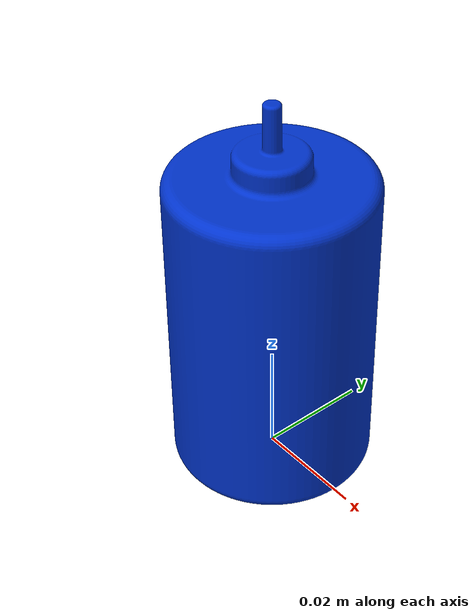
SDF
<?xml version="1.0" ?>
<sdf version="1.8">
  <model name="motor">
    <static>true</static>
    <pose>0 0 0 0 0 0</pose>

    <link name="motor">

      <!-- VISUAL -->
      <visual name="motor_visual">
        <geometry>
          <mesh>
            <uri>model://motor/meshes/Motor_1.stl</uri>
            <scale>0.001 0.001 0.001</scale>
          </mesh>
        </geometry>

        <material>
          <ambient>0.0 0.05 0.2 1</ambient>
          <diffuse>0.0 0.2 0.8 1</diffuse>
          <specular>0.8 0.8 0.8 1</specular>
          <emissive>0.0 0.0 0.05 1</emissive>
        </material>
      </visual>

      <!-- COLLISION -->
      <collision name="motor_collision">
        <pose>0 0 0.04 0 0 0</pose> <!-- half length -->
        <geometry>
          <cylinder>
            <radius>0.02</radius>
            <length>0.08</length>
          </cylinder>
        </geometry>
      </collision>

    </link>
  </model>
</sdf>
